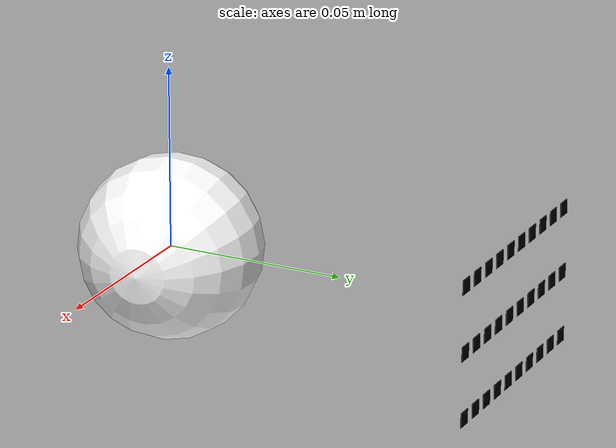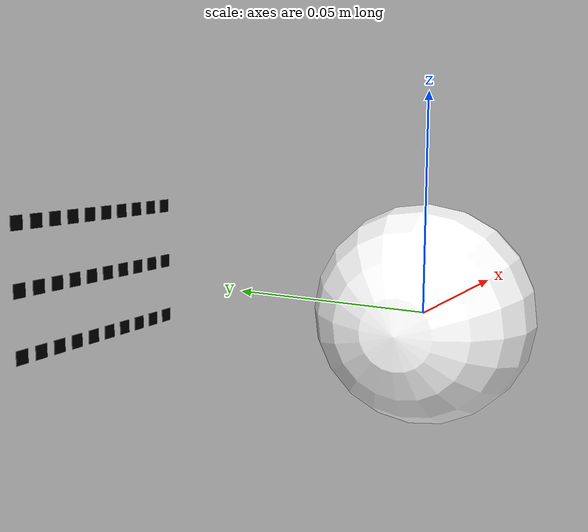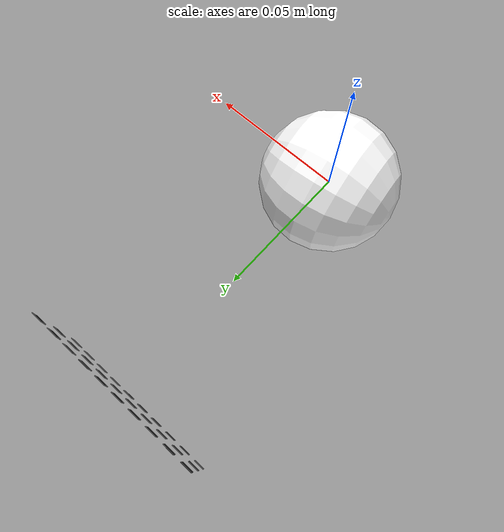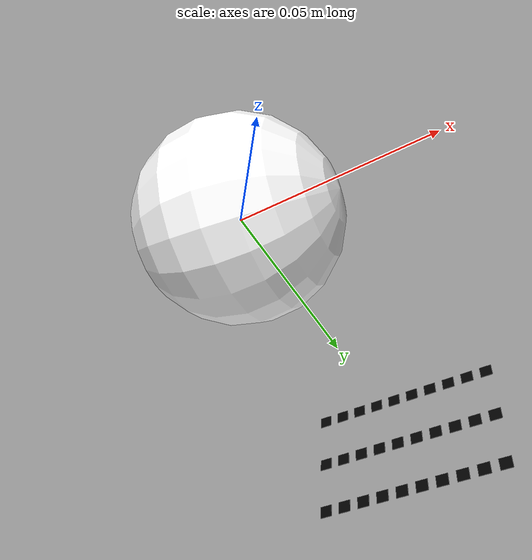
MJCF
<?xml version="1.0"?>
<mujoco>
    <compiler angle="radian"/>
    <option collision="all" timestep="0.002"/>
    <size njmax="1000" nconmax="400"/>
    <default class="main">
        <default class="eye">
            <position ctrllimited="true" kp="5"/>
            <joint type="hinge" stiffness="0.0" damping="0.5" armature="0.0" limited="true"/>
        </default>
        <default class="smart-glass-grid">
            <geom type="box" size="0.0020 0.0001 0.0020" rgba="0 0 0 1"/>
        </default>
        <default class="background-grid">
            <geom type="box" size="0.005 0.0001 0.025" rgba="0.5 0.5 0.5 0"/>
        </default>
    </default>
    <asset>
        <texture type="skybox" builtin="gradient" rgb1="1 1 1" rgb2="0.6 0.8 1" width="256" height="256"/>
        <texture type="cube" name="blue-eye" file="assets/blue_eye_texture_circle.png" gridsize="3 4" gridlayout=".U..LFRB.D.."/>
        <material name="blue-eye" texture="blue-eye" texuniform="true"/>
        <mesh name="eye" file="assets/basic_eye_2.stl" scale="0.05 0.05 0.05"/>
    </asset>
    <worldbody>
        <light name="scene_directional_light" directional="true" castshadow="false" cutoff="4" exponent="20"
               diffuse="1 1 1" specular="0 0 0" pos=".9 .3 2.5"/>

        <camera name="env" pos="-0.2 -0.05 0.08" euler="1.0 -0.85 -0.37"/>

        <body name="eye" pos="0 0 0" quat="0.7071068 0.7071068 0 0">
            <geom name="eye" type="sphere" size="0.025" material="blue-eye" rgba="1 1 1 1" quat="0.6625191 0.0130711 0.7488417 0.0115643"/>
            <camera name="eye" fovy="90"/>
            <joint name="eye-joint-x" class="eye" axis="1 0 0" range="-1.0 1.0"/>
            <joint name="eye-joint-y" class="eye" axis="0 1 0" range="-1.0 1.0"/>
            <site name="rangefinder-site" quat="0 0 1 0"/>
        </body>

        <body name="smart-glass-pane" pos="0 0.10 0">
            <geom name="grid-4" pos="-0.030 0 0.0179" class="smart-glass-grid"/>
            <geom name="grid-5" pos="-0.0233 0 0.0179" class="smart-glass-grid"/>

            <geom name="grid-6" pos="-0.01666 0 0.0179" class="smart-glass-grid"/>
            <geom name="grid-7" pos="-0.010 0 0.0179" class="smart-glass-grid"/>
            <geom name="grid-8" pos="-0.00333 0 0.0179" class="smart-glass-grid"/>
            <geom name="grid-9" pos="0.00333 0 0.0179" class="smart-glass-grid"/>
            <geom name="grid-10" pos="0.010 0 0.0179" class="smart-glass-grid"/>
            <geom name="grid-11" pos="0.01666 0 0.0179" class="smart-glass-grid"/>

            <geom name="grid-12" pos="0.02333 0 0.0179" class="smart-glass-grid"/>
            <geom name="grid-13" pos="0.030 0 0.0179" class="smart-glass-grid"/>

            <geom name="grid-22" pos="-0.030 0 0" class="smart-glass-grid"/>
            <geom name="grid-23" pos="-0.02333 0 0" class="smart-glass-grid"/>

            <geom name="grid-24" pos="-0.01666 0 0" class="smart-glass-grid"/>
            <geom name="grid-25" pos="-0.010 0 0" class="smart-glass-grid"/>
            <geom name="grid-26" pos="-0.00333 0 0" class="smart-glass-grid"/>
            <geom name="grid-27" pos="0.00333 0 0" class="smart-glass-grid"/>
            <geom name="grid-28" pos="0.010 0 0" class="smart-glass-grid"/>
            <geom name="grid-29" pos="0.01666 0 0" class="smart-glass-grid"/>

            <geom name="grid-30" pos="0.02333 0 0" class="smart-glass-grid"/>
            <geom name="grid-31" pos="0.030 0 0" class="smart-glass-grid"/>

            <geom name="grid-40" pos="-0.030 0 -0.0179" class="smart-glass-grid"/>
            <geom name="grid-41" pos="-0.02333 0 -0.0179" class="smart-glass-grid"/>

            <geom name="grid-42" pos="-0.01666 0 -0.0179" class="smart-glass-grid"/>
            <geom name="grid-43" pos="-0.010 0 -0.0179" class="smart-glass-grid"/>
            <geom name="grid-44" pos="-0.00333 0 -0.0179" class="smart-glass-grid"/>
            <geom name="grid-45" pos="0.00333 0 -0.0179" class="smart-glass-grid"/>
            <geom name="grid-46" pos="0.010 0 -0.0179" class="smart-glass-grid"/>
            <geom name="grid-47" pos="0.01666 0 -0.0179" class="smart-glass-grid"/>

            <geom name="grid-48" pos="0.02333 0 -0.0179" class="smart-glass-grid"/>
            <geom name="grid-49" pos="0.030 0 -0.0179" class="smart-glass-grid"/>
        </body>

        <body name="background-pane" pos="0 0.08 0">
            <geom name="grid-bgp" pos="-0 0 0" class="background-grid"/>
        </body>
    </worldbody>
    <actuator>
        <position name="eye-x-motor" joint="eye-joint-x" class="eye" ctrlrange="-1.0 1.0"/>
        <position name="eye-y-motor" joint="eye-joint-y" class="eye" ctrlrange="-1.0 1.0"/>
    </actuator>
    <sensor>
        <rangefinder name="rangefinder" site="rangefinder-site"/>
    </sensor>
</mujoco>
